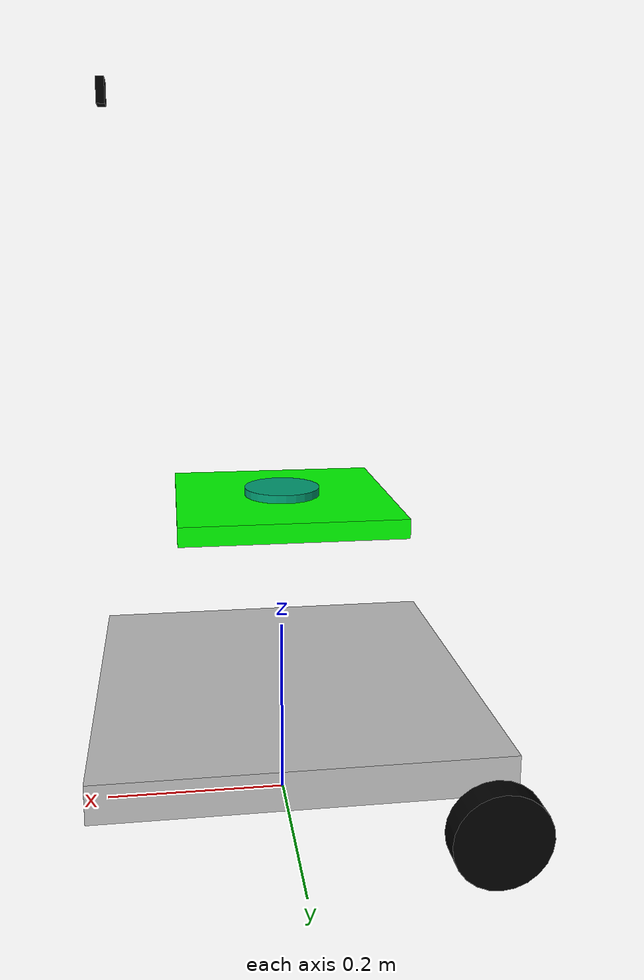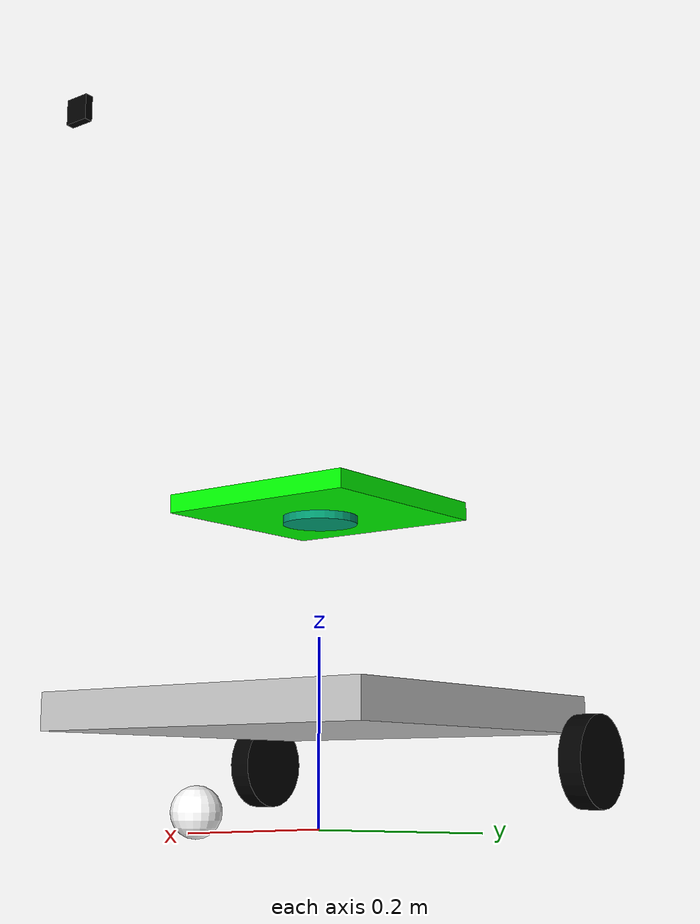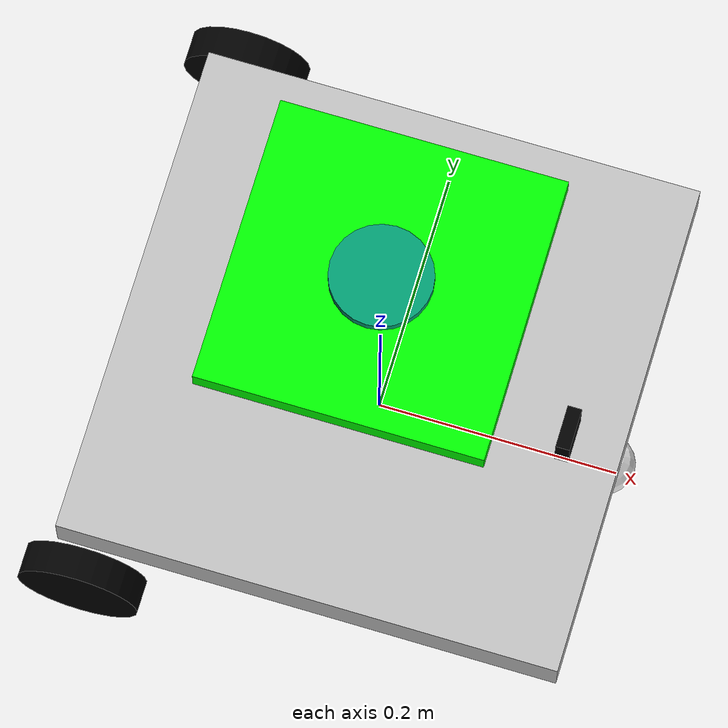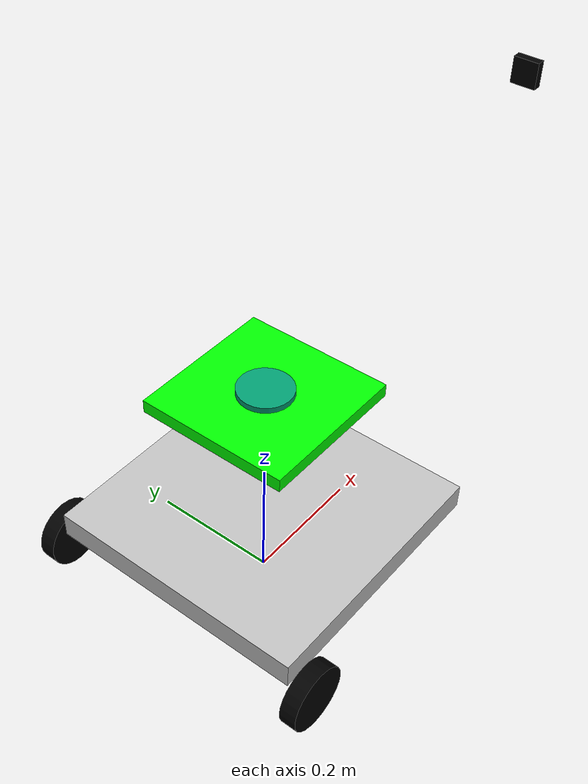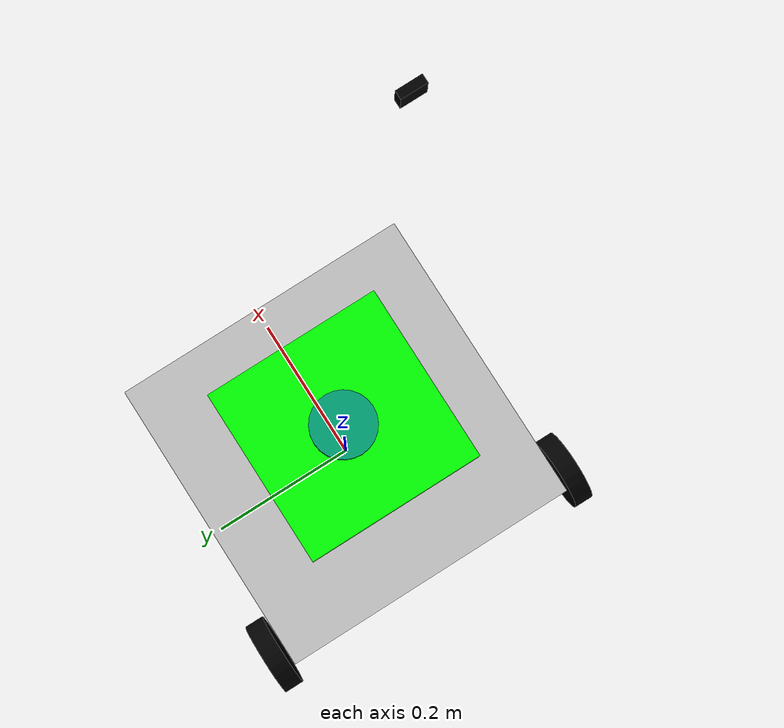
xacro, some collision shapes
<?xml version="1.0"?>

<!--=========================starting xacros================================-->
<robot xmlns:xacro="http://www.ros.org/wiki/xacro" name="prototype">
<xacro:include filename="$(find prototype)/urdf/wheel.xacro"/>
<xacro:include filename="$(find prototype)/urdf/lidar.xacro"/>
<xacro:include filename="$(find prototype)/urdf/joint_macros.xacro"/>
<xacro:include filename="$(find prototype)/urdf/link_macros.xacro"/>
<xacro:include filename="$(find prototype)/urdf/hardware_interface.xacro"/>
<xacro:include filename="$(find prototype)/urdf/camera.xacro"/>
<xacro:include filename="$(find prototype)/urdf/pallet_loader.xacro"/>

<!--=========================xacro:properties=============================-->
    <xacro:property name="body_length" value="0.41"/>
    <xacro:property name="body_width" value="0.41"/>
    <xacro:property name="body_height" value="0.82"/>

                              <!-- end of xacros-->

  <!--=====================Base-Footprint and base_link link=================-->
  <!-- BASE LINK-->
  <link name="base_link"></link>

  <joint name="base_joint" type="fixed">
    <parent link="base_link"/>
    <child link="base_footprint"/>
    <origin xyz="0.0 0.0 0.0" rpy="0 0 0"/>
  </joint>

<link name="base_footprint">
</link>

 <joint name="chassis_joint" type="fixed">
    <parent link="base_link"/>
    <child link="chassis"/>
    <origin xyz="0.0 0.0 0.12" rpy="0 0 0"/>
  </joint>

<link name="chassis">
    <visual>
        <geometry>
            <box size="0.4112 0.4112 0.04"/>
        </geometry>
        <material name="silver">
            <color rgba="0.75 0.75 0.75 1.0"/> <!-- Silver color with RGBA values -->
        </material>
    </visual>
</link>

 <joint name="caster_wheel_joint" type="fixed">
  <parent link="chassis"/>
  <child link="caster_wheel"/>
  <axis xyz="0 0 0"/>
  <origin xyz="0.19 0.0 -0.10" rpy="0 0 0"/>
 </joint>

 <link name="caster_wheel">
            <visual>
                <origin xyz="0.0 0.0 0.0" rpy="0.0 0.0 0.0"/>
                <geometry>
                 <sphere radius="0.025"/>
                </geometry>
                <material name="white">
                    <color rgba="1.0 1.0 1.0 1.0"/>
                </material>
            </visual>
 </link>

 <joint name="imu_joint" type="fixed">
  <parent link="chassis"/>
  <child link="imu_link"/>
  <axis xyz="0.0 0.0 1.0"/>
  <origin xyz="0.0 0.0 1.00" rpy="0.0 0.0 0.0"/>
 </joint>

 <link name="imu_link"></link>

</robot>

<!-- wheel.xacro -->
<!--=========================starting xacros================================-->
<robot xmlns:xacro="http://www.ros.org/wiki/xacro" name="prototype">
<xacro:include filename="$(find prototype)/urdf/joint_macros.xacro"/>

<!--==========================xacro for wheel=============================-->
    <xacro:macro name="wheel" params="wheel_name">
        <link name="${wheel_name}">
            <visual>
                <origin xyz="0.0 0.0 0.0" rpy="1.57 0.0 0.0"/>
                <geometry>
                 <cylinder radius="${wheel_radius}" length="${wheel_length}"/>
                </geometry>
                <material name="black">
                    <color rgba="0.0 0.0 0.0 1.0"/>
                </material>
            </visual>
            <collision>
                <origin xyz="0.0 0.0 0.0" rpy="0.0 1.5707 0.0"/>
                <geometry>
                    <cylinder radius="${wheel_radius}" length="${wheel_length}"/>
                </geometry>
            </collision>
            <inertial>
                <origin rpy="0 0 0" xyz="0 0 0"/>
                <mass value="0.034"/>
              <inertia ixx="1.37e-5" ixy="0" ixz="0" iyy="1.37e-5" iyz="0" izz="3.41e-6"/>
              </inertial>
              <dynamics damping="0.5" friction="0.1"/>

        </link>
   </xacro:macro>

   <!-- *********************wheel links and joints***************************************-->

<xacro:joint_wheel name="back_right_wheel_joint" origin="-0.1806 -0.225 -0.05"
parent="chassis" child="back_right_wheel"/>

<xacro:wheel  wheel_name="back_right_wheel"/>

<xacro:joint_wheel name="back_left_wheel_joint" origin="-0.1806 0.225 -0.05"
parent="chassis" child="back_left_wheel"/>

<xacro:wheel  wheel_name="back_left_wheel"/>

</robot>

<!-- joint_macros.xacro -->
<robot xmlns:xacro="http://www.ros.org/wiki/xacro" name="prototype">

    <xacro:property name="wheel_radius" value="0.05"/>
    <xacro:property name="wheel_length" value="0.026"/>

   <!--===============xacro for continuous joints=========================-->
    <xacro:macro name="joint_wheel" params="name origin parent child">
        <joint name="${name}" type="fixed">
            <origin xyz="${origin}" rpy="0.0 0.0 0.0"/>
            <parent link="${parent}"/>
            <child link="${child}"/>
            <axis xyz="0.0 1.0 0.0"/>
            <limit effort="200" velocity="2.0"/>
            <joint_properties damping="1.1" friction="1.0"/>
        </joint>
    </xacro:macro>

  <!--===================== xacro for fixed joints===========================-->
  <xacro:macro name="fixed_joint" params="name origin parent child">
    <joint name="${name}" type="fixed">
        <origin xyz="${origin}" rpy="0.0 0.0 0.0"/>
        <parent link="${parent}"/>
        <child link="${child}"/>
    </joint>
  </xacro:macro>

</robot>

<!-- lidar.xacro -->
<!--=========================starting xacros================================-->
<robot xmlns:xacro="http://www.ros.org/wiki/xacro" name="prototype">

<link name="base_laser">
    <visual>
        <origin xyz="0 0 0" rpy="0.0 0.0 0.0"/>
        <geometry>
           <mesh filename="package://prototype/meshes/sensors/rplidar.dae" scale="1.0 1.0 1.0"/>
        </geometry>
       </visual>
       <collision>
           <origin rpy="0 0 0" xyz="0 0 0"/>
          <geometry>
               <cylinder radius="0.0408" length="0.037493"/>
          </geometry>
        </collision>
        <inertial>
           <mass value="0.01"/>
           <origin rpy="0 0 0" xyz="0 0 0.0204"/>
           <inertia ixx="6.066578520833334e-06" ixy="0" ixz="0" iyy="6.072950163333333e-06" iyz="0" izz="9.365128684166666e-06"/>
         </inertial>
</link>

<joint name="base_laser_joint" type="fixed">
    <origin xyz="0.0 0.0 0.222" rpy="0.0 0.0 0.0"/>
    <parent link="chassis"/>
    <child link="base_laser"/>
    <axis xyz="0 0 1"/>
    <limit lower="-0.1" upper="0.0" effort="20.0" velocity="2.0"/>
    <dynamics damping="0.1"  friction="0.01"/>
</joint>

</robot>

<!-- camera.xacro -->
<!--=========================starting xacros================================-->
<robot xmlns:xacro="http://www.ros.org/wiki/xacro" name="prototype">

<link name="camera_link">
    <visual>
        <origin xyz="0 0 0.0" rpy="0.0 0.0 0.0"/>
        <geometry>
        <box size="0.010 0.03 0.03"/>
        </geometry>
        <material name="black">
          <color rgba="0.0 0.0 0.0 1.0"/>
        </material>
       </visual>
</link>

<joint name="camera_joint" type="fixed">
    <origin xyz="0.19 -0.20 0.675" rpy="3.14 0.0 0.0"/>
    <parent link="chassis"/>
    <child link="camera_link"/>
</joint>

<joint name="camera_optical_joint" type="fixed">
    <origin xyz="0.0 0.0 0.0" rpy="-1.57 0.0 -1.57"/>
    <parent link="camera_link"/>
    <child link="camera_link_optical"/>
</joint>
<link name="camera_link_optical">
</link>

</robot>

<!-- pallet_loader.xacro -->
<!--=========================starting xacros================================-->
<robot xmlns:xacro="http://www.ros.org/wiki/xacro" name="prototype">

<link name="pallet_loader">
    <visual>
        <origin xyz="0 0 0" rpy="0.0 0.0 0.0"/>
        <geometry>
          <box size="0.23 0.23 0.02"/>
        </geometry>
        <material name="silver">
            <color rgba="0.0 1.0 0.0 1.0"/>
        </material>
       </visual>
</link>

<joint name="pallet_loader_joint" type="revolute">
    <origin xyz="0.0 0.0 0.222" rpy="0.0 0.0 0.0"/>
    <parent link="chassis"/>
    <child link="pallet_loader"/>
    <axis xyz="0 1 0"/>
    <limit lower="0.0" upper="1.0" effort="20.0" velocity="2.0"/>
    <dynamics damping="0.1"  friction="0.01"/>
</joint>

    <ros2_control name="pallet_loader_" type="actuator">
      <hardware>
        <plugin>pallet_loader/PalletLoader</plugin>
        <param name="device">/dev/serial/by-id/usb-Arduino__www.arduino.cc__0043_55838323835351110262-if00</param>
        <param name="timeout">10000</param>
        <param name="baud_rate">115200</param>
        <param name="pallet_joint">pallet_loader_joint</param>
      </hardware>
      <joint name="pallet_loader_joint">
        <command_interface name="position">
          <param name="down">0.0</param>
          <param name="up">1.0</param>
          <param name="stop">0.5</param>
        </command_interface>
        <state_interface name="position"/>
      </joint>
    </ros2_control>

</robot>
